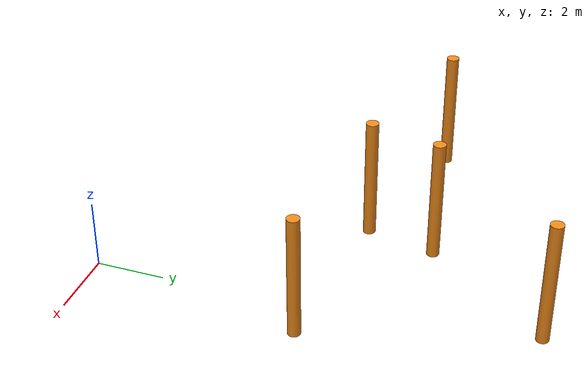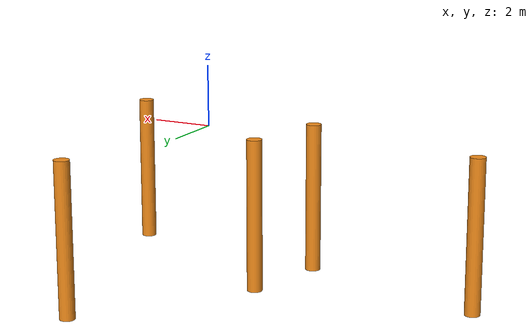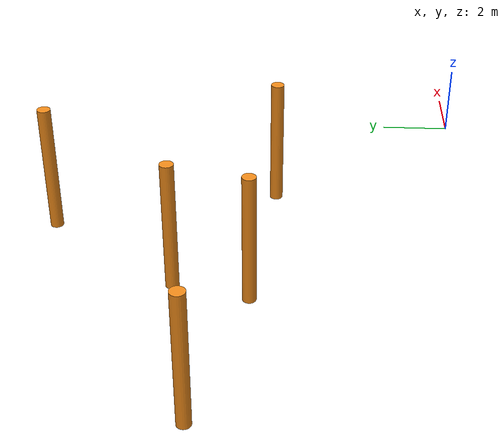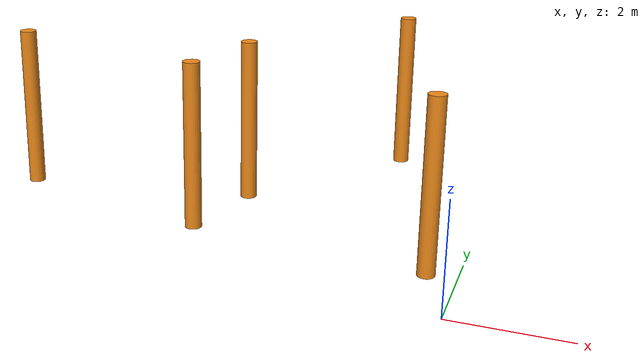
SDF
<sdf version="1.6">
 <model name="Skog">
  <link name="link_1_clone_15">
   <inertial>
    <mass>1</mass>
    <inertia><ixx>0.145833</ixx><ixy>0</ixy><ixz>0</ixz><iyy>0.145833</iyy><iyz>0</iyz><izz>0.125</izz></inertia>
   </inertial>
   <pose>-3.26893 12.2276 0 0 -0 0</pose>
   <visual name="visual">
    <geometry><cylinder><radius>0.2</radius><length>4</length></cylinder></geometry>
    <material>
     <lighting>1</lighting>
     <script><uri>file://media/materials/scripts/gazebo.material</uri><name>Gazebo/Orange</name></script>
     <shader type="vertex"><normal_map>__default__</normal_map></shader>
     <ambient>0.3 0.3 0.3 1</ambient>
     <diffuse>0.7 0.7 0.7 1</diffuse>
     <specular>0.01 0.01 0.01 1</specular>
     <emissive>0 0 0 1</emissive>
    </material>
   </visual>
   <collision name="collision">
    <geometry><cylinder><radius>0.2</radius><length>4</length></cylinder></geometry>
    <surface>
     <friction>
      <ode><mu>1</mu><mu2>1</mu2><fdir1>0 0 0</fdir1><slip1>0</slip1><slip2>0</slip2></ode>
      <torsional>
       <coefficient>1</coefficient>
       <patch_radius>0</patch_radius>
       <surface_radius>0</surface_radius>
       <use_patch_radius>1</use_patch_radius>
       <ode><slip>0</slip></ode>
      </torsional>
     </friction>
     <bounce><restitution_coefficient>0</restitution_coefficient><threshold>1e+06</threshold></bounce>
     <contact>
      <collide_without_contact>0</collide_without_contact>
      <collide_without_contact_bitmask>1</collide_without_contact_bitmask>
      <collide_bitmask>1</collide_bitmask>
      <ode>
       <soft_cfm>0</soft_cfm>
       <soft_erp>0.2</soft_erp>
       <kp>1e+13</kp>
       <kd>1</kd>
       <max_vel>0.01</max_vel>
       <min_depth>0</min_depth>
      </ode>
      <bullet>
       <split_impulse>1</split_impulse>
       <split_impulse_penetration_threshold>-0.01</split_impulse_penetration_threshold>
       <soft_cfm>0</soft_cfm>
       <soft_erp>0.2</soft_erp>
       <kp>1e+13</kp>
       <kd>1</kd>
      </bullet>
     </contact>
    </surface>
   </collision>
  </link>
  <link name="link_1_clone_17">
   <inertial>
    <mass>1</mass>
    <inertia><ixx>0.145833</ixx><ixy>0</ixy><ixz>0</ixz><iyy>0.145833</iyy><iyz>0</iyz><izz>0.125</izz></inertia>
   </inertial>
   <pose>-11.8447 7.26937 0 0 -0 0</pose>
   <visual name="visual">
    <geometry><cylinder><radius>0.2</radius><length>4</length></cylinder></geometry>
    <material>
     <lighting>1</lighting>
     <script><uri>file://media/materials/scripts/gazebo.material</uri><name>Gazebo/Orange</name></script>
     <shader type="vertex"><normal_map>__default__</normal_map></shader>
     <ambient>0.3 0.3 0.3 1</ambient>
     <diffuse>0.7 0.7 0.7 1</diffuse>
     <specular>0.01 0.01 0.01 1</specular>
     <emissive>0 0 0 1</emissive>
    </material>
   </visual>
   <collision name="collision">
    <geometry><cylinder><radius>0.2</radius><length>4</length></cylinder></geometry>
    <surface>
     <friction>
      <ode><mu>1</mu><mu2>1</mu2><fdir1>0 0 0</fdir1><slip1>0</slip1><slip2>0</slip2></ode>
      <torsional>
       <coefficient>1</coefficient>
       <patch_radius>0</patch_radius>
       <surface_radius>0</surface_radius>
       <use_patch_radius>1</use_patch_radius>
       <ode><slip>0</slip></ode>
      </torsional>
     </friction>
     <bounce><restitution_coefficient>0</restitution_coefficient><threshold>1e+06</threshold></bounce>
     <contact>
      <collide_without_contact>0</collide_without_contact>
      <collide_without_contact_bitmask>1</collide_without_contact_bitmask>
      <collide_bitmask>1</collide_bitmask>
      <ode>
       <soft_cfm>0</soft_cfm>
       <soft_erp>0.2</soft_erp>
       <kp>1e+13</kp>
       <kd>1</kd>
       <max_vel>0.01</max_vel>
       <min_depth>0</min_depth>
      </ode>
      <bullet>
       <split_impulse>1</split_impulse>
       <split_impulse_penetration_threshold>-0.01</split_impulse_penetration_threshold>
       <soft_cfm>0</soft_cfm>
       <soft_erp>0.2</soft_erp>
       <kp>1e+13</kp>
       <kd>1</kd>
      </bullet>
     </contact>
    </surface>
   </collision>
  </link>
  <link name="link_1_clone_3">
   <inertial>
    <mass>1</mass>
    <inertia><ixx>0.145833</ixx><ixy>0</ixy><ixz>0</ixz><iyy>0.145833</iyy><iyz>0</iyz><izz>0.125</izz></inertia>
   </inertial>
   <pose>-6.81104 5.98327 0 0 -0 0</pose>
   <visual name="visual">
    <geometry><cylinder><radius>0.2</radius><length>4</length></cylinder></geometry>
    <material>
     <lighting>1</lighting>
     <script><uri>file://media/materials/scripts/gazebo.material</uri><name>Gazebo/Orange</name></script>
     <shader type="vertex"><normal_map>__default__</normal_map></shader>
     <ambient>0.3 0.3 0.3 1</ambient>
     <diffuse>0.7 0.7 0.7 1</diffuse>
     <specular>0.01 0.01 0.01 1</specular>
     <emissive>0 0 0 1</emissive>
    </material>
   </visual>
   <collision name="collision">
    <geometry><cylinder><radius>0.2</radius><length>4</length></cylinder></geometry>
    <surface>
     <friction>
      <ode><mu>1</mu><mu2>1</mu2><fdir1>0 0 0</fdir1><slip1>0</slip1><slip2>0</slip2></ode>
      <torsional>
       <coefficient>1</coefficient>
       <patch_radius>0</patch_radius>
       <surface_radius>0</surface_radius>
       <use_patch_radius>1</use_patch_radius>
       <ode><slip>0</slip></ode>
      </torsional>
     </friction>
     <bounce><restitution_coefficient>0</restitution_coefficient><threshold>1e+06</threshold></bounce>
     <contact>
      <collide_without_contact>0</collide_without_contact>
      <collide_without_contact_bitmask>1</collide_without_contact_bitmask>
      <collide_bitmask>1</collide_bitmask>
      <ode>
       <soft_cfm>0</soft_cfm>
       <soft_erp>0.2</soft_erp>
       <kp>1e+13</kp>
       <kd>1</kd>
       <max_vel>0.01</max_vel>
       <min_depth>0</min_depth>
      </ode>
      <bullet>
       <split_impulse>1</split_impulse>
       <split_impulse_penetration_threshold>-0.01</split_impulse_penetration_threshold>
       <soft_cfm>0</soft_cfm>
       <soft_erp>0.2</soft_erp>
       <kp>1e+13</kp>
       <kd>1</kd>
      </bullet>
     </contact>
    </surface>
   </collision>
  </link>
  <link name="link_1_clone_77">
   <inertial>
    <mass>1</mass>
    <inertia><ixx>0.145833</ixx><ixy>0</ixy><ixz>0</ixz><iyy>0.145833</iyy><iyz>0</iyz><izz>0.125</izz></inertia>
   </inertial>
   <pose>-1.21046 5.43209 0 0 -0 0</pose>
   <visual name="visual">
    <geometry><cylinder><radius>0.2</radius><length>4</length></cylinder></geometry>
    <material>
     <lighting>1</lighting>
     <script><uri>file://media/materials/scripts/gazebo.material</uri><name>Gazebo/Orange</name></script>
     <shader type="vertex"><normal_map>__default__</normal_map></shader>
     <ambient>0.3 0.3 0.3 1</ambient>
     <diffuse>0.7 0.7 0.7 1</diffuse>
     <specular>0.01 0.01 0.01 1</specular>
     <emissive>0 0 0 1</emissive>
    </material>
   </visual>
   <collision name="collision">
    <geometry><cylinder><radius>0.2</radius><length>4</length></cylinder></geometry>
    <surface>
     <friction>
      <ode><mu>1</mu><mu2>1</mu2><fdir1>0 0 0</fdir1><slip1>0</slip1><slip2>0</slip2></ode>
      <torsional>
       <coefficient>1</coefficient>
       <patch_radius>0</patch_radius>
       <surface_radius>0</surface_radius>
       <use_patch_radius>1</use_patch_radius>
       <ode><slip>0</slip></ode>
      </torsional>
     </friction>
     <bounce><restitution_coefficient>0</restitution_coefficient><threshold>1e+06</threshold></bounce>
     <contact>
      <collide_without_contact>0</collide_without_contact>
      <collide_without_contact_bitmask>1</collide_without_contact_bitmask>
      <collide_bitmask>1</collide_bitmask>
      <ode>
       <soft_cfm>0</soft_cfm>
       <soft_erp>0.2</soft_erp>
       <kp>1e+13</kp>
       <kd>1</kd>
       <max_vel>0.01</max_vel>
       <min_depth>0</min_depth>
      </ode>
      <bullet>
       <split_impulse>1</split_impulse>
       <split_impulse_penetration_threshold>-0.01</split_impulse_penetration_threshold>
       <soft_cfm>0</soft_cfm>
       <soft_erp>0.2</soft_erp>
       <kp>1e+13</kp>
       <kd>1</kd>
      </bullet>
     </contact>
    </surface>
   </collision>
  </link>
  <link name="link_1_clone_8">
   <inertial>
    <mass>1</mass>
    <inertia><ixx>0.145833</ixx><ixy>0</ixy><ixz>0</ixz><iyy>0.145833</iyy><iyz>0</iyz><izz>0.125</izz></inertia>
   </inertial>
   <pose>-6.26893 8.22755 0 0 -0 0</pose>
   <visual name="visual">
    <geometry><cylinder><radius>0.2</radius><length>4</length></cylinder></geometry>
    <material>
     <lighting>1</lighting>
     <script><uri>file://media/materials/scripts/gazebo.material</uri><name>Gazebo/Orange</name></script>
     <shader type="vertex"><normal_map>__default__</normal_map></shader>
     <ambient>0.3 0.3 0.3 1</ambient>
     <diffuse>0.7 0.7 0.7 1</diffuse>
     <specular>0.01 0.01 0.01 1</specular>
     <emissive>0 0 0 1</emissive>
    </material>
   </visual>
   <collision name="collision">
    <geometry><cylinder><radius>0.2</radius><length>4</length></cylinder></geometry>
    <surface>
     <friction>
      <ode><mu>1</mu><mu2>1</mu2><fdir1>0 0 0</fdir1><slip1>0</slip1><slip2>0</slip2></ode>
      <torsional>
       <coefficient>1</coefficient>
       <patch_radius>0</patch_radius>
       <surface_radius>0</surface_radius>
       <use_patch_radius>1</use_patch_radius>
       <ode><slip>0</slip></ode>
      </torsional>
     </friction>
     <bounce><restitution_coefficient>0</restitution_coefficient><threshold>1e+06</threshold></bounce>
     <contact>
      <collide_without_contact>0</collide_without_contact>
      <collide_without_contact_bitmask>1</collide_without_contact_bitmask>
      <collide_bitmask>1</collide_bitmask>
      <ode>
       <soft_cfm>0</soft_cfm>
       <soft_erp>0.2</soft_erp>
       <kp>1e+13</kp>
       <kd>1</kd>
       <max_vel>0.01</max_vel>
       <min_depth>0</min_depth>
      </ode>
      <bullet>
       <split_impulse>1</split_impulse>
       <split_impulse_penetration_threshold>-0.01</split_impulse_penetration_threshold>
       <soft_cfm>0</soft_cfm>
       <soft_erp>0.2</soft_erp>
       <kp>1e+13</kp>
       <kd>1</kd>
      </bullet>
     </contact>
    </surface>
   </collision>
  </link>
  <static>0</static>
 </model>
</sdf>
